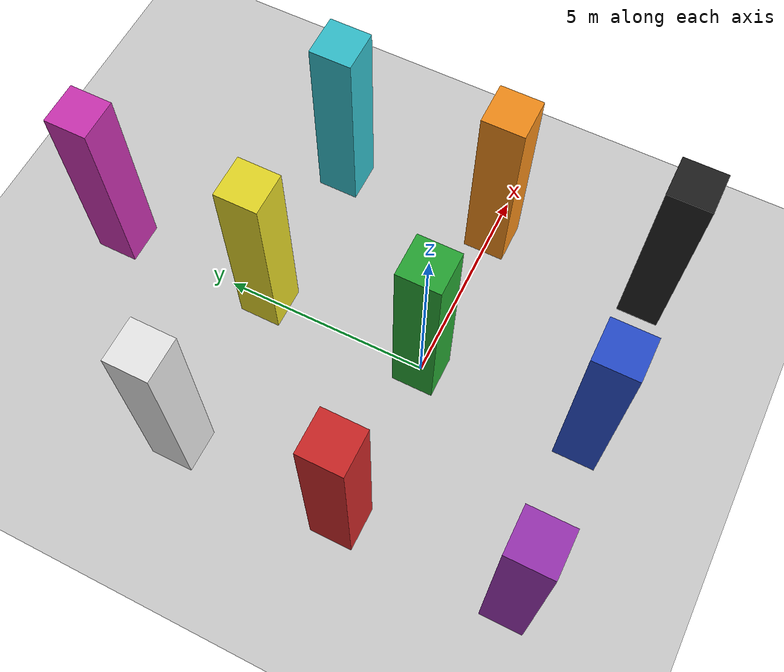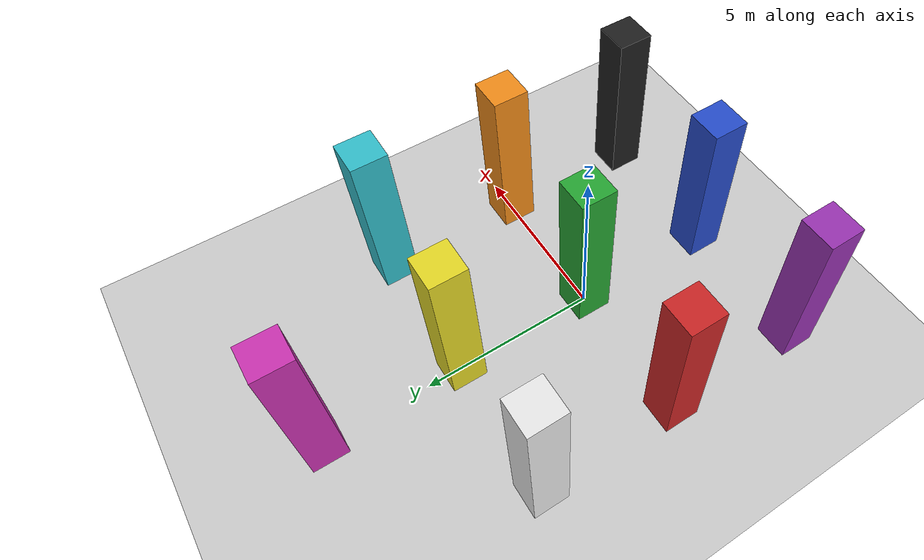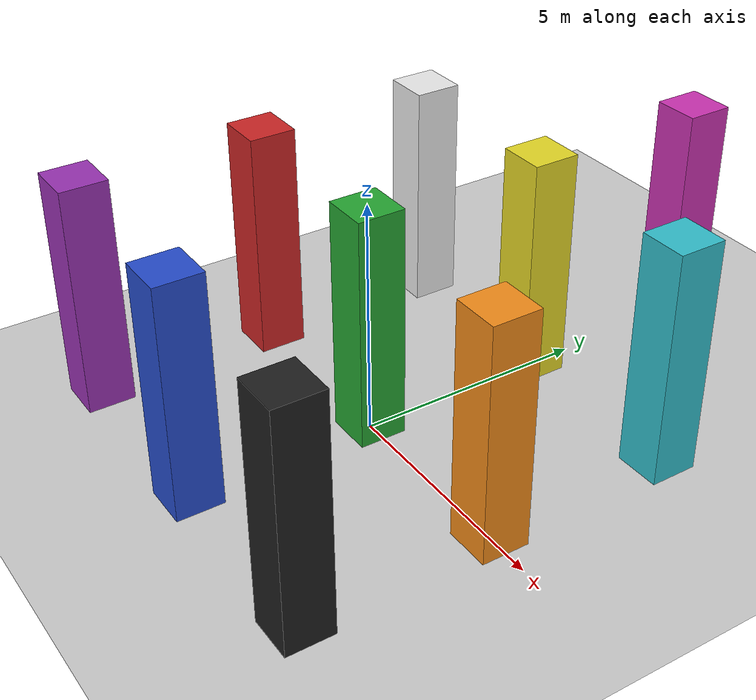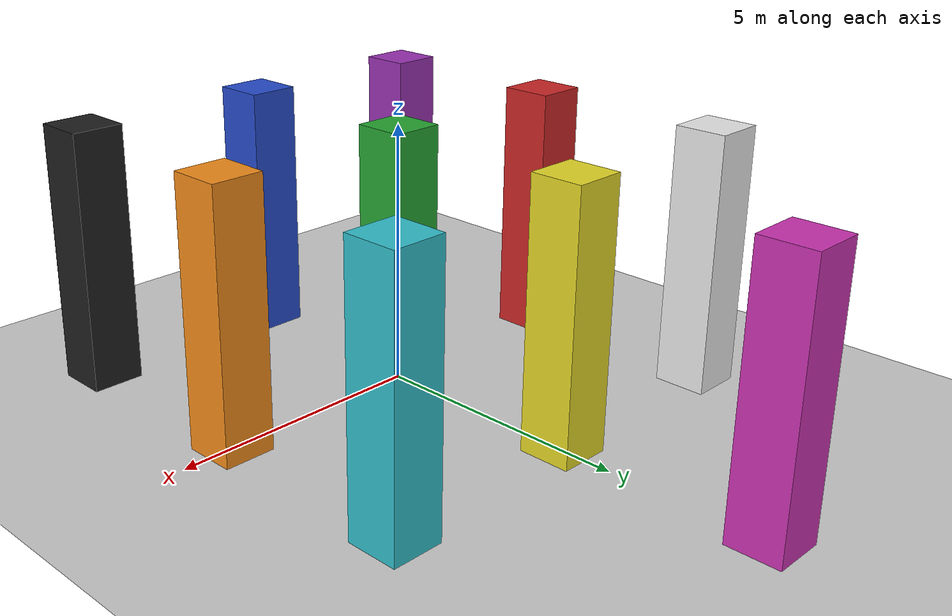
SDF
<?xml version="1.0" ?>
<sdf version='1.6'>
  <world name='default'>
    <!-- 无人机，放在左下角，朝向中心障碍物 -->

    <!-- 地面 -->
    <model name='ground_plane'>
      <static>1</static>
      <link name='link'>
        <collision name='collision'>
          <geometry>
            <plane>
              <normal>0 0 1</normal>
              <size>1000 1000</size>
            </plane>
          </geometry>
          <surface>
            <friction>
              <ode>
                <mu>100000</mu>
                <mu2>100000</mu2>
                <fdir1>0 0 0</fdir1>
                <slip1>0</slip1>
                <slip2>0</slip2>
              </ode>
            </friction>
            <bounce>
              <restitution_coefficient>0</restitution_coefficient>
              <threshold>0</threshold>
            </bounce>
            <contact>
              <ode>
                <soft_cfm>0</soft_cfm>
                <soft_erp>0</soft_erp>
                <kp>1e12</kp>
                <kd>1e10</kd>
                <max_vel>1000</max_vel>
                <min_depth>0</min_depth>
              </ode>
              <bullet>
                <soft_cfm>0</soft_cfm>
                <soft_erp>0</soft_erp>
                <kp>1e12</kp>
                <kd>1e10</kd>
              </bullet>
            </contact>
          </surface>
          <max_contacts>100</max_contacts>
        </collision>
        <visual name='visual'>
          <cast_shadows>0</cast_shadows>
          <geometry>
            <plane>
              <normal>0 0 1</normal>
              <size>1000 1000</size>
            </plane>
          </geometry>
          <material>
            <script>
              <uri>file://media/materials/scripts/gazebo.material</uri>
              <name>Gazebo/Grey</name>
            </script>
          </material>
        </visual>
        <velocity_decay>
          <linear>0</linear>
          <angular>0</angular>
        </velocity_decay>
        <self_collide>0</self_collide>
        <kinematic>0</kinematic>
        <gravity>1</gravity>
      </link>
    </model>

    <!-- 10个障碍物，分布在中心及周围，间隔约4米 -->
    <model name="box_1">
      <static>true</static>
      <pose>-4 0 2.5 0 0 0</pose>
      <link name="link">
        <collision name="collision">
          <geometry>
            <box>
              <size>1 1 5</size>
            </box>
          </geometry>
        </collision>
        <visual name="visual">
          <geometry>
            <box>
              <size>1 1 5</size>
            </box>
          </geometry>
          <material>
            <script>
              <uri>file://media/materials/scripts/gazebo.material</uri>
              <name>Gazebo/Red</name>
            </script>
          </material>
        </visual>
      </link>
    </model>
    <model name="box_2">
      <static>true</static>
      <pose>0 -4 2.5 0 0 0</pose>
      <link name="link">
        <collision name="collision">
          <geometry>
            <box>
              <size>1 1 5</size>
            </box>
          </geometry>
        </collision>
        <visual name="visual">
          <geometry>
            <box>
              <size>1 1 5</size>
            </box>
          </geometry>
          <material>
            <script>
              <uri>file://media/materials/scripts/gazebo.material</uri>
              <name>Gazebo/Blue</name>
            </script>
          </material>
        </visual>
      </link>
    </model>
    <model name="box_3">
      <static>true</static>
      <pose>0 0 2.5 0 0 0</pose>
      <link name="link">
        <collision name="collision">
          <geometry>
            <box>
              <size>1 1 5</size>
            </box>
          </geometry>
        </collision>
        <visual name="visual">
          <geometry>
            <box>
              <size>1 1 5</size>
            </box>
          </geometry>
          <material>
            <script>
              <uri>file://media/materials/scripts/gazebo.material</uri>
              <name>Gazebo/Green</name>
            </script>
          </material>
        </visual>
      </link>
    </model>
    <model name="box_4">
      <static>true</static>
      <pose>0 4 2.5 0 0 0</pose>
      <link name="link">
        <collision name="collision">
          <geometry>
            <box>
              <size>1 1 5</size>
            </box>
          </geometry>
        </collision>
        <visual name="visual">
          <geometry>
            <box>
              <size>1 1 5</size>
            </box>
          </geometry>
          <material>
            <script>
              <uri>file://media/materials/scripts/gazebo.material</uri>
              <name>Gazebo/Yellow</name>
            </script>
          </material>
        </visual>
      </link>
    </model>
    <model name="box_5">
      <static>true</static>
      <pose>4 0 2.5 0 0 0</pose>
      <link name="link">
        <collision name="collision">
          <geometry>
            <box>
              <size>1 1 5</size>
            </box>
          </geometry>
        </collision>
        <visual name="visual">
          <geometry>
            <box>
              <size>1 1 5</size>
            </box>
          </geometry>
          <material>
            <script>
              <uri>file://media/materials/scripts/gazebo.material</uri>
              <name>Gazebo/Orange</name>
            </script>
          </material>
        </visual>
      </link>
    </model>
    <model name="box_6">
      <static>true</static>
      <pose>-4 -4 2.5 0 0 0</pose>
      <link name="link">
        <collision name="collision">
          <geometry>
            <box>
              <size>1 1 5</size>
            </box>
          </geometry>
        </collision>
        <visual name="visual">
          <geometry>
            <box>
              <size>1 1 5</size>
            </box>
          </geometry>
          <material>
            <script>
              <uri>file://media/materials/scripts/gazebo.material</uri>
              <name>Gazebo/Purple</name>
            </script>
          </material>
        </visual>
      </link>
    </model>
    <model name="box_7">
      <static>true</static>
      <pose>-4 4 2.5 0 0 0</pose>
      <link name="link">
        <collision name="collision">
          <geometry>
            <box>
              <size>1 1 5</size>
            </box>
          </geometry>
        </collision>
        <visual name="visual">
          <geometry>
            <box>
              <size>1 1 5</size>
            </box>
          </geometry>
          <material>
            <script>
              <uri>file://media/materials/scripts/gazebo.material</uri>
              <name>Gazebo/White</name>
            </script>
          </material>
        </visual>
      </link>
    </model>
    <model name="box_8">
      <static>true</static>
      <pose>4 -4 2.5 0 0 0</pose>
      <link name="link">
        <collision name="collision">
          <geometry>
            <box>
              <size>1 1 5</size>
            </box>
          </geometry>
        </collision>
        <visual name="visual">
          <geometry>
            <box>
              <size>1 1 5</size>
            </box>
          </geometry>
          <material>
            <script>
              <uri>file://media/materials/scripts/gazebo.material</uri>
              <name>Gazebo/Black</name>
            </script>
          </material>
        </visual>
      </link>
    </model>
    <model name="box_9">
      <static>true</static>
      <pose>4 4 2.5 0 0 0</pose>
      <link name="link">
        <collision name="collision">
          <geometry>
            <box>
              <size>1 1 5</size>
            </box>
          </geometry>
        </collision>
        <visual name="visual">
          <geometry>
            <box>
              <size>1 1 5</size>
            </box>
          </geometry>
          <material>
            <script>
              <uri>file://media/materials/scripts/gazebo.material</uri>
              <name>Gazebo/Cyan</name>
            </script>
          </material>
        </visual>
      </link>
    </model>
    <model name="box_10">
      <static>true</static>
      <pose>0 8 2.5 0 0 0</pose>
      <link name="link">
        <collision name="collision">
          <geometry>
            <box>
              <size>1 1 5</size>
            </box>
          </geometry>
        </collision>
        <visual name="visual">
          <geometry>
            <box>
              <size>1 1 5</size>
            </box>
          </geometry>
          <material>
            <script>
              <uri>file://media/materials/scripts/gazebo.material</uri>
              <name>Gazebo/Magenta</name>
            </script>
          </material>
        </visual>
      </link>
    </model>

    <!-- 物理、光照等参数保留 -->
    <physics type="ode">
      <max_step_size>0.0025</max_step_size>
      <real_time_update_rate>400</real_time_update_rate>
      <ode>
        <solver>
          <type>quick</type>
          <iters>20</iters>
          <sor>1.0</sor>
        </solver>
        <constraints>
          <cfm>0.0</cfm>
          <erp>0.2</erp>
          <contact_max_correcting_vel>0.1</contact_max_correcting_vel>
          <contact_surface_layer>0.0</contact_surface_layer>
        </constraints>
      </ode>
    </physics>
    <light name='sun' type='directional'>
      <cast_shadows>1</cast_shadows>
      <pose frame=''>0 0 10 0 -0 0</pose>
      <diffuse>0.8 0.8 0.8 1</diffuse>
      <specular>0.1 0.1 0.1 1</specular>
      <attenuation>
        <range>1000</range>
        <constant>0.9</constant>
        <linear>0.01</linear>
        <quadratic>0.001</quadratic>
      </attenuation>
      <direction>-0.5 0.5 -1</direction>
    </light>
    <gravity>0 0 -9.8</gravity>
    <magnetic_field>6e-06 2.3e-05 -4.2e-05</magnetic_field>
    <atmosphere type='adiabatic'/>
    <scene>
      <ambient>0.4 0.4 0.4 1</ambient>
      <background>0.7 0.7 0.7 1</background>
      <shadows>1</shadows>
    </scene>
    <gui fullscreen='0'>
      <camera name='user_camera'>
        <pose frame=''>6.27056 -8.58147 29.6461 0 1.16364 1.7402</pose>
        <view_controller>orbit</view_controller>
        <projection_type>perspective</projection_type>
      </camera>
    </gui>
  </world>
</sdf>
